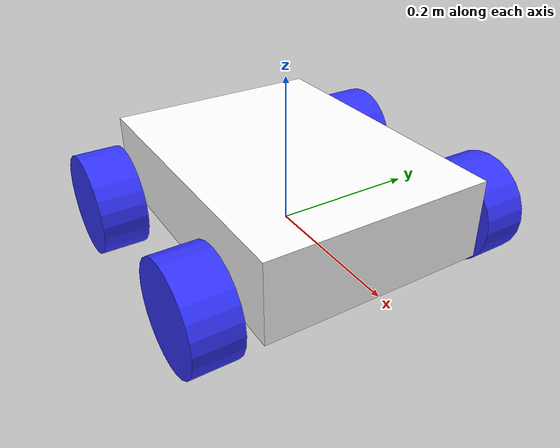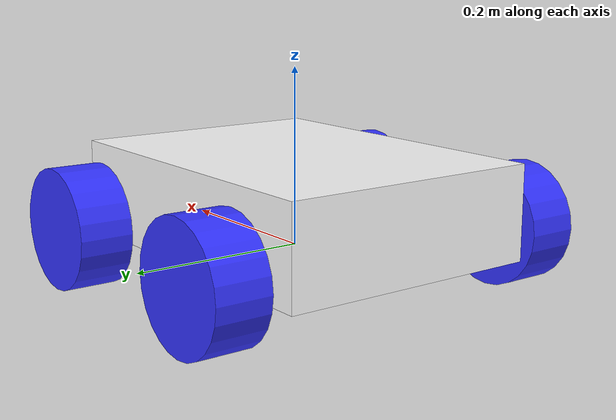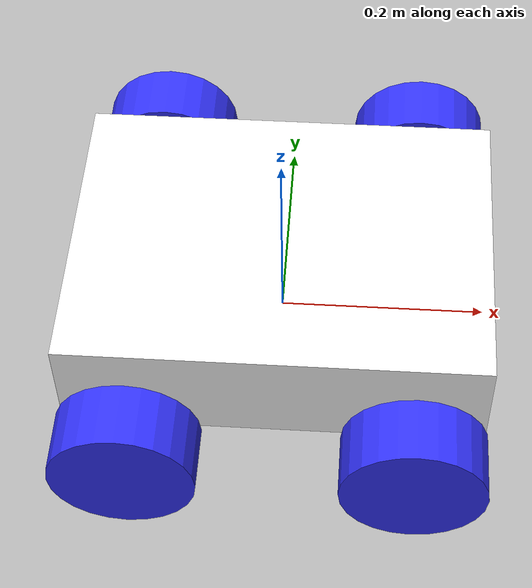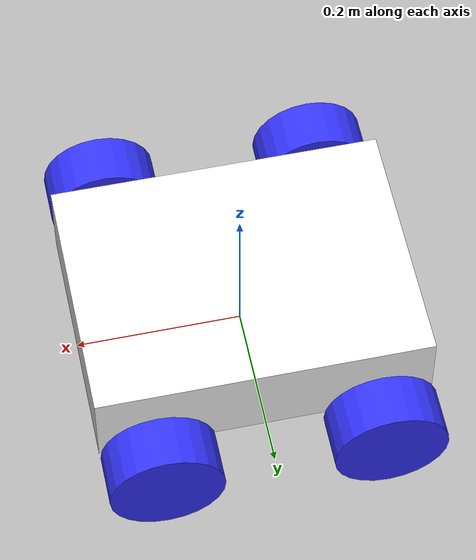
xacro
<?xml version="1.0"?>
<robot xmlns:xacro="http://www.ros.org/wiki/xacro">

    <xacro:include filename="inertial_macros.xacro"/>

    <material name="white">
        <color rgba="1 1 1 1"/>
    </material>

    <material name="orange">
        <color rgba="1 0.3 0.1 1"/>
    </material>

    <material name="blue">
        <color rgba="0.2 0.2 1 1"/>
    </material>

    <material name="black">
        <color rgba="0 0 0 1"/>
    </material>

     <material name="red">
        <color rgba="0 0 0 1"/>
    </material>

        <!--BASE LINK-->

    <link name="base_link">
    </link>

    <!--base footprint-->
    <joint name="base_footprint_joint" type="fixed">
        <parent link="base_link"/>
        <child link="base_footprint"/>
        <origin xyz="0 0 0" rpy="0 0 0"/>
    </joint>
    <link name="base_footprint">

    </link>

        <!--CHASSIS LINK-->

    <joint name= "chassis_joint" type="fixed">
        <parent link="base_link"/>
        <child link="chassis" />
        <origin xyz="-0.2 0 0"/>
    </joint>

    <link name="chassis">
        <visual>
            <origin xyz="0.2 0 0.053"/>
            <geometry>
                <box size="0.4 0.3 0.106"/>
            </geometry>
            <material name="white"/>
        </visual>
         <collision>
            <origin xyz="0.2 0 0.053"/>
            <geometry>
                <box size="0.4 0.3 0.106"/>
            </geometry>
        </collision>
        <xacro:inertial_box mass="0.5" x="0.4" y="0.3" z="0.106">
            <origin xyz="0.2 0 0.053" rpy="0 0 0"/>
        </xacro:inertial_box>
    </link>

    <gazebo reference="chassis">
        <material>Gazebo/White</material>
    </gazebo>

        <!--LEFT WHELS-->

    <joint name="left_front_wheel_joint" type="continuous">
        <parent link="base_link"/>
        <child link="left_front_wheel"/>
        <origin xyz="0.1323 0.2 0.0235" rpy="-${pi/2} 0 0"/>
        <axis xyz="0 0 1"/>
    </joint>

    <link name="left_front_wheel">
        <visual>
            <geometry>
                <cylinder radius="0.068" length="0.06"/>
            </geometry>
            <material name="blue"/>
        </visual>
        <collision>
            <geometry>
                <cylinder radius="0.068" length="0.06"/>
            </geometry>
        </collision>
        <xacro:inertial_cylinder mass="0.1" length="0.06" radius="0.068">
            <origin xyz="0 0 0" rpy="0 0 0"/>
        </xacro:inertial_cylinder>
    </link>

    <gazebo reference="left_front_wheel">
        <material>Gazebo/Blue</material>
    </gazebo>

    <joint name="left_back_wheel_joint" type="continuous">
        <parent link="base_link"/>
        <child link="left_back_wheel"/>
        <origin xyz="-0.1323 0.2 0.0235" rpy="-${pi/2} 0 0"/>
        <axis xyz="0 0 1"/>
    </joint>

    <link name="left_back_wheel">
        <visual>
            <geometry>
                <cylinder radius="0.068" length="0.06"/>
            </geometry>
            <material name="blue"/>
        </visual>
        <collision>
            <geometry>
                <cylinder radius="0.068" length="0.06"/>
            </geometry>
        </collision>
        <xacro:inertial_cylinder mass="0.1" length="0.06" radius="0.068">
            <origin xyz="0 0 0" rpy="0 0 0"/>
        </xacro:inertial_cylinder>
    </link>

    <gazebo reference="left_back_wheel">
        <material>Gazebo/Blue</material>
    </gazebo>

        <!--RIGHT WHELS-->

    <joint name= "right_front_wheel_joint" type="continuous">
        <parent link="base_link"/>
        <child link="right_front_wheel"/>
        <origin xyz="0.1323 -0.2 0.0235" rpy="${pi/2} 0 0"/>
        <axis xyz="0 0 -1"/>
    </joint>

    <link name="right_front_wheel">
        <visual>
            <geometry>
                <cylinder radius="0.068" length="0.06"/>
            </geometry>
            <material name="blue"/>
        </visual>
         <collision>
            <geometry>
                <cylinder radius="0.068" length="0.06"/>
            </geometry>
        </collision>
        <xacro:inertial_cylinder mass="0.1" length="0.06" radius="0.068">
            <origin xyz="0 0 0" rpy="0 0 0"/>
        </xacro:inertial_cylinder>
    </link>

    <gazebo reference="right_front_wheel">
        <material>Gazebo/Blue</material>
    </gazebo>

    <joint name= "right_back_wheel_joint" type="continuous">
        <parent link="base_link"/>
        <child link="right_back_wheel"/>
        <origin xyz="-0.1323 -0.2 0.0235" rpy="${pi/2} 0 0"/>
        <axis xyz="0 0 -1"/>
    </joint>

    <link name="right_back_wheel">
        <visual>
            <geometry>
                <cylinder radius="0.068" length="0.06"/>
            </geometry>
            <material name="blue"/>
        </visual>
        <collision>
            <geometry>
                <cylinder radius="0.068" length="0.06"/>
            </geometry>
        </collision>
        <xacro:inertial_cylinder mass="0.1" length="0.06" radius="0.068">
            <origin xyz="0 0 0" rpy="0 0 0"/>
        </xacro:inertial_cylinder>
    </link>

    <gazebo reference="right_back_wheel">
        <material>Gazebo/Blue</material>
    </gazebo>

</robot>

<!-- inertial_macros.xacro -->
<robot xmlns:xacro="http://www.ros.org/wiki/xacro" >

    <!-- Specify some standard inertial calculations https://en.wikipedia.org/wiki/List_of_moments_of_inertia -->
    <!-- These make use of xacro's mathematical functionality -->
      <xacro:macro name="inertial_sphere" params="mass radius *origin">
        <inertial>
            <xacro:insert_block name="origin"/>
            <mass value="${mass}" />
            <inertia ixx="${(2/5) * mass * (radius*radius)}" ixy="0.0" ixz="0.0"
                    iyy="${(2/5) * mass * (radius*radius)}" iyz="0.0"
                    izz="${(2/5) * mass * (radius*radius)}" />
        </inertial>
    </xacro:macro>

     <xacro:macro name="inertial_box" params="mass x y z *origin">
        <inertial>
            <xacro:insert_block name="origin"/>
            <mass value="${mass}" />
            <inertia ixx="${(1/12) * mass * (y*y+z*z)}" ixy="0.0" ixz="0.0"
                    iyy="${(1/12) * mass * (x*x+z*z)}" iyz="0.0"
                    izz="${(1/12) * mass * (x*x+y*y)}" />
        </inertial>
    </xacro:macro>

    <xacro:macro name="inertial_cylinder" params="mass length radius *origin">
        <inertial>
            <xacro:insert_block name="origin"/>
            <mass value="${mass}" />
            <inertia ixx="${(1/12) * mass * (3*radius*radius + length*length)}" ixy="0.0" ixz="0.0"
                    iyy="${(1/12) * mass * (3*radius*radius + length*length)}" iyz="0.0"
                    izz="${(1/2) * mass * (radius*radius)}" />
        </inertial>
    </xacro:macro>

</robot>
